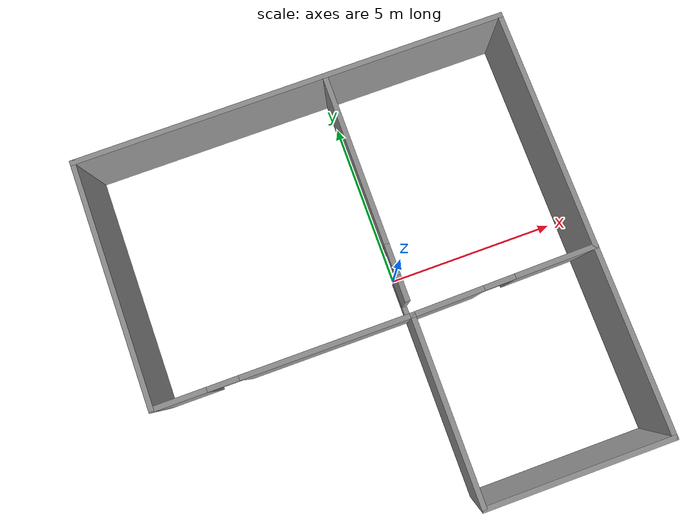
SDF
<?xml version='1.0'?>
<sdf version='1.6'>
  <model name='myworld'>
    <pose frame=''>-0.978288 -0.360562 0 0 -0 0</pose>
    <link name='Wall_0'>
      <collision name='Wall_0_Collision'>
        <geometry>
          <box>
            <size>0.25 0.15 2.5</size>
          </box>
        </geometry>
        <pose frame=''>0 0 1.25 0 -0 0</pose>
      </collision>
      <visual name='Wall_0_Visual'>
        <pose frame=''>0 0 1.25 0 -0 0</pose>
        <geometry>
          <box>
            <size>0.25 0.15 2.5</size>
          </box>
        </geometry>
        <material>
          <script>
            <uri>file://media/materials/scripts/gazebo.material</uri>
            <name>Gazebo/Grey</name>
          </script>
          <ambient>1 1 1 1</ambient>
        </material>
        <meta>
          <layer>0</layer>
        </meta>
      </visual>
      <pose frame=''>6.1997 6.225 0 0 -0 0</pose>
    </link>
    <link name='Wall_1'>
      <collision name='Wall_1_Collision'>
        <geometry>
          <box>
            <size>12.75 0.15 2.5</size>
          </box>
        </geometry>
        <pose frame=''>0 0 1.25 0 -0 0</pose>
      </collision>
      <visual name='Wall_1_Visual'>
        <pose frame=''>0 0 1.25 0 -0 0</pose>
        <geometry>
          <box>
            <size>12.75 0.15 2.5</size>
          </box>
        </geometry>
        <material>
          <script>
            <uri>file://media/materials/scripts/gazebo.material</uri>
            <name>Gazebo/Grey</name>
          </script>
          <ambient>1 1 1 1</ambient>
        </material>
        <meta>
          <layer>0</layer>
        </meta>
      </visual>
      <pose frame=''>-0.0503 6.225 0 0 -0 3.14159</pose>
    </link>
    <link name='Wall_10'>
      <pose frame=''>3.65429 -0.838484 0 0 0 -3.12784</pose>
      <visual name='Wall_10_Visual_0'>
        <pose frame=''>-1.51859 0 1.25 0 -0 0</pose>
        <geometry>
          <box>
            <size>2.4225 0.15 2.5</size>
          </box>
        </geometry>
        <material>
          <script>
            <uri>file://media/materials/scripts/gazebo.material</uri>
            <name>Gazebo/Grey</name>
          </script>
          <ambient>1 1 1 1</ambient>
        </material>
        <meta>
          <layer>0</layer>
        </meta>
      </visual>
      <collision name='Wall_10_Collision_0'>
        <geometry>
          <box>
            <size>2.4225 0.15 2.5</size>
          </box>
        </geometry>
        <pose frame=''>-1.51859 0 1.25 0 -0 0</pose>
      </collision>
      <visual name='Wall_10_Visual_1'>
        <pose frame=''>1.66125 0 1.25 0 -0 0</pose>
        <geometry>
          <box>
            <size>2.13719 0.15 2.5</size>
          </box>
        </geometry>
        <material>
          <script>
            <uri>file://media/materials/scripts/gazebo.material</uri>
            <name>Gazebo/Grey</name>
          </script>
          <ambient>1 1 1 1</ambient>
        </material>
        <meta>
          <layer>0</layer>
        </meta>
      </visual>
      <collision name='Wall_10_Collision_1'>
        <geometry>
          <box>
            <size>2.13719 0.15 2.5</size>
          </box>
        </geometry>
        <pose frame=''>1.66125 0 1.25 0 -0 0</pose>
      </collision>
      <visual name='Wall_10_Visual_2'>
        <pose frame=''>0.142659 0 2.25 0 -0 0</pose>
        <geometry>
          <box>
            <size>0.9 0.15 0.5</size>
          </box>
        </geometry>
        <material>
          <script>
            <uri>file://media/materials/scripts/gazebo.material</uri>
            <name>Gazebo/Grey</name>
          </script>
          <ambient>1 1 1 1</ambient>
        </material>
        <meta>
          <layer>0</layer>
        </meta>
      </visual>
      <collision name='Wall_10_Collision_2'>
        <geometry>
          <box>
            <size>0.9 0.15 0.5</size>
          </box>
        </geometry>
        <pose frame=''>0.142659 0 2.25 0 -0 0</pose>
      </collision>
    </link>
    <link name='Wall_2'>
      <collision name='Wall_2_Collision'>
        <geometry>
          <box>
            <size>7.25 0.15 2.5</size>
          </box>
        </geometry>
        <pose frame=''>0 0 1.25 0 -0 0</pose>
      </collision>
      <visual name='Wall_2_Visual'>
        <pose frame=''>0 0 1.25 0 -0 0</pose>
        <geometry>
          <box>
            <size>7.25 0.15 2.5</size>
          </box>
        </geometry>
        <material>
          <script>
            <uri>file://media/materials/scripts/gazebo.material</uri>
            <name>Gazebo/Grey</name>
          </script>
          <ambient>1 1 1 1</ambient>
        </material>
        <meta>
          <layer>0</layer>
        </meta>
      </visual>
      <pose frame=''>-6.3503 2.675 0 0 0 -1.5708</pose>
    </link>
    <link name='Wall_3'>
      <pose frame=''>-2.6753 -0.875 0 0 -0 0</pose>
      <visual name='Wall_3_Visual_0'>
        <pose frame=''>-2.94067 0 1.25 0 -0 0</pose>
        <geometry>
          <box>
            <size>1.61866 0.15 2.5</size>
          </box>
        </geometry>
        <material>
          <script>
            <uri>file://media/materials/scripts/gazebo.material</uri>
            <name>Gazebo/Grey</name>
          </script>
          <ambient>1 1 1 1</ambient>
        </material>
        <meta>
          <layer>0</layer>
        </meta>
      </visual>
      <collision name='Wall_3_Collision_0'>
        <geometry>
          <box>
            <size>1.61866 0.15 2.5</size>
          </box>
        </geometry>
        <pose frame=''>-2.94067 0 1.25 0 -0 0</pose>
      </collision>
      <visual name='Wall_3_Visual_1'>
        <pose frame=''>1.25933 0 1.25 0 -0 0</pose>
        <geometry>
          <box>
            <size>4.98134 0.15 2.5</size>
          </box>
        </geometry>
        <material>
          <script>
            <uri>file://media/materials/scripts/gazebo.material</uri>
            <name>Gazebo/Grey</name>
          </script>
          <ambient>1 1 1 1</ambient>
        </material>
        <meta>
          <layer>0</layer>
        </meta>
      </visual>
      <collision name='Wall_3_Collision_1'>
        <geometry>
          <box>
            <size>4.98134 0.15 2.5</size>
          </box>
        </geometry>
        <pose frame=''>1.25933 0 1.25 0 -0 0</pose>
      </collision>
      <visual name='Wall_3_Visual_2'>
        <pose frame=''>-1.68134 0 2.25 0 -0 0</pose>
        <geometry>
          <box>
            <size>0.9 0.15 0.5</size>
          </box>
        </geometry>
        <material>
          <script>
            <uri>file://media/materials/scripts/gazebo.material</uri>
            <name>Gazebo/Grey</name>
          </script>
          <ambient>1 1 1 1</ambient>
        </material>
        <meta>
          <layer>0</layer>
        </meta>
      </visual>
      <collision name='Wall_3_Collision_2'>
        <geometry>
          <box>
            <size>0.9 0.15 0.5</size>
          </box>
        </geometry>
        <pose frame=''>-1.68134 0 2.25 0 -0 0</pose>
      </collision>
    </link>
    <link name='Wall_4'>
      <collision name='Wall_4_Collision'>
        <geometry>
          <box>
            <size>5.5 0.15 2.5</size>
          </box>
        </geometry>
        <pose frame=''>0 0 1.25 0 -0 0</pose>
      </collision>
      <visual name='Wall_4_Visual'>
        <pose frame=''>0 0 1.25 0 -0 0</pose>
        <geometry>
          <box>
            <size>5.5 0.15 2.5</size>
          </box>
        </geometry>
        <material>
          <script>
            <uri>file://media/materials/scripts/gazebo.material</uri>
            <name>Gazebo/Grey</name>
          </script>
          <ambient>1 1 1 1</ambient>
        </material>
        <meta>
          <layer>0</layer>
        </meta>
      </visual>
      <pose frame=''>0.9997 -3.55 0 0 0 -1.5708</pose>
    </link>
    <link name='Wall_5'>
      <collision name='Wall_5_Collision'>
        <geometry>
          <box>
            <size>5.5 0.15 2.5</size>
          </box>
        </geometry>
        <pose frame=''>0 0 1.25 0 -0 0</pose>
      </collision>
      <visual name='Wall_5_Visual'>
        <pose frame=''>0 0 1.25 0 -0 0</pose>
        <geometry>
          <box>
            <size>5.5 0.15 2.5</size>
          </box>
        </geometry>
        <material>
          <script>
            <uri>file://media/materials/scripts/gazebo.material</uri>
            <name>Gazebo/Grey</name>
          </script>
          <ambient>1 1 1 1</ambient>
        </material>
        <meta>
          <layer>0</layer>
        </meta>
      </visual>
      <pose frame=''>3.6747 -6.225 0 0 -0 0</pose>
    </link>
    <link name='Wall_6'>
      <collision name='Wall_6_Collision'>
        <geometry>
          <box>
            <size>12.6004 0.15 2.5</size>
          </box>
        </geometry>
        <pose frame=''>0 0 1.25 0 -0 0</pose>
      </collision>
      <visual name='Wall_6_Visual'>
        <pose frame=''>0 0 1.25 0 -0 0</pose>
        <geometry>
          <box>
            <size>12.6004 0.15 2.5</size>
          </box>
        </geometry>
        <material>
          <script>
            <uri>file://media/materials/scripts/gazebo.material</uri>
            <name>Gazebo/Grey</name>
          </script>
          <ambient>1 1 1 1</ambient>
        </material>
        <meta>
          <layer>0</layer>
        </meta>
      </visual>
      <pose frame=''>6.2997 0 0 0 -0 1.57883</pose>
    </link>
    <link name='Wall_8'>
      <pose frame=''>0.9997 2.675 0 0 -0 1.5708</pose>
      <visual name='Wall_8_Visual_0'>
        <pose frame=''>-3.01416 0 0.25 0 -0 0</pose>
        <geometry>
          <box>
            <size>1.22168 0.15 0.5</size>
          </box>
        </geometry>
        <material>
          <script>
            <uri>file://media/materials/scripts/gazebo.material</uri>
            <name>Gazebo/Grey</name>
          </script>
          <ambient>1 1 1 1</ambient>
        </material>
        <meta>
          <layer>0</layer>
        </meta>
      </visual>
      <collision name='Wall_8_Collision_0'>
        <geometry>
          <box>
            <size>1.22168 0.15 0.5</size>
          </box>
        </geometry>
        <pose frame=''>-3.01416 0 0.25 0 -0 0</pose>
      </collision>
      <visual name='Wall_8_Visual_1'>
        <pose frame=''>1.06084 0 1.25 0 -0 0</pose>
        <geometry>
          <box>
            <size>5.12832 0.15 2.5</size>
          </box>
        </geometry>
        <material>
          <script>
            <uri>file://media/materials/scripts/gazebo.material</uri>
            <name>Gazebo/Grey</name>
          </script>
          <ambient>1 1 1 1</ambient>
        </material>
        <meta>
          <layer>0</layer>
        </meta>
      </visual>
      <collision name='Wall_8_Collision_1'>
        <geometry>
          <box>
            <size>5.12832 0.15 2.5</size>
          </box>
        </geometry>
        <pose frame=''>1.06084 0 1.25 0 -0 0</pose>
      </collision>
      <visual name='Wall_8_Visual_2'>
        <pose frame=''>-2.78563 0 1.5 0 -0 0</pose>
        <geometry>
          <box>
            <size>0.76461 0.15 2</size>
          </box>
        </geometry>
        <material>
          <script>
            <uri>file://media/materials/scripts/gazebo.material</uri>
            <name>Gazebo/Grey</name>
          </script>
          <ambient>1 1 1 1</ambient>
        </material>
        <meta>
          <layer>0</layer>
        </meta>
      </visual>
      <collision name='Wall_8_Collision_2'>
        <geometry>
          <box>
            <size>0.76461 0.15 2</size>
          </box>
        </geometry>
        <pose frame=''>-2.78563 0 1.5 0 -0 0</pose>
      </collision>
      <visual name='Wall_8_Visual_3'>
        <pose frame=''>-1.95332 0 2.25 0 -0 0</pose>
        <geometry>
          <box>
            <size>0.9 0.15 0.5</size>
          </box>
        </geometry>
        <material>
          <script>
            <uri>file://media/materials/scripts/gazebo.material</uri>
            <name>Gazebo/Grey</name>
          </script>
          <ambient>1 1 1 1</ambient>
        </material>
        <meta>
          <layer>0</layer>
        </meta>
      </visual>
      <collision name='Wall_8_Collision_3'>
        <geometry>
          <box>
            <size>0.9 0.15 0.5</size>
          </box>
        </geometry>
        <pose frame=''>-1.95332 0 2.25 0 -0 0</pose>
      </collision>
    </link>
    <static>1</static>
  </model>
</sdf>
